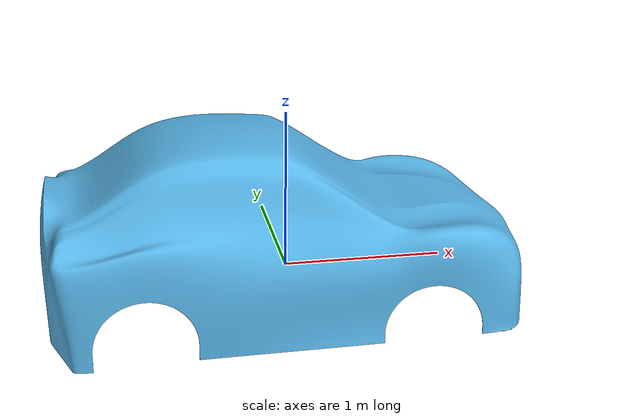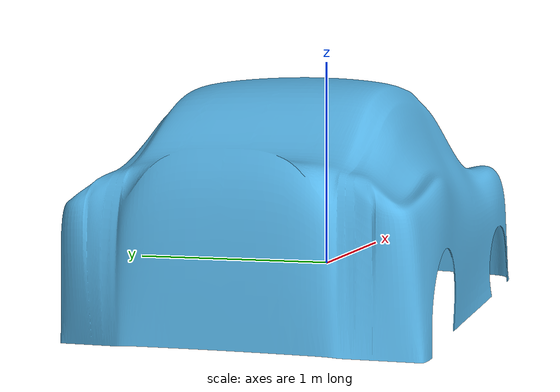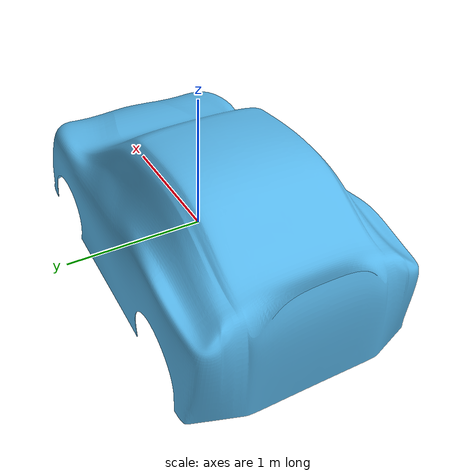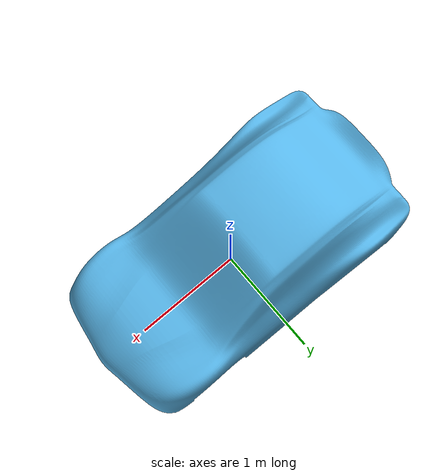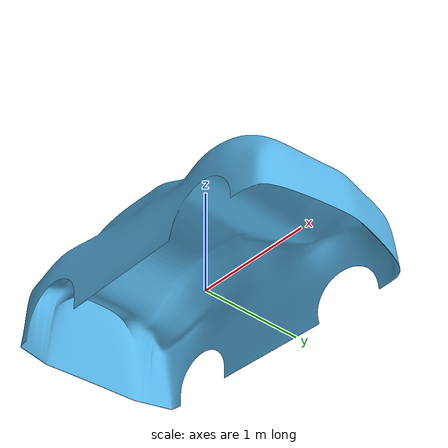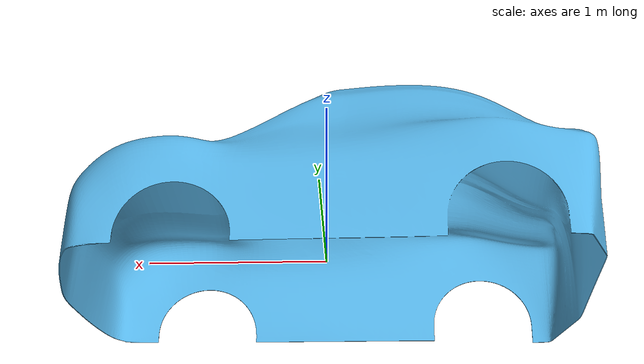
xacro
<?xml version="1.0"?>

<robot xmlns:xacro="http://www.ros.org/wiki/xacro" name="car">
    <link name="base_link" />
    <link name="shell_link">
        <visual>
            <origin xyz="0.0 0.0 0.0" rpy="0.0 0.0 ${pi / 2}" />
            <geometry>
                <mesh filename="file://$(find driver_assistant)/meshes/shell.dae" />
            </geometry>
        </visual>
        <collision>
            <origin xyz="0.0 0.0 0.0" rpy="0.0 0.0 0.0" />
            <geometry>
                <box size="2.95 1.55 1.1" />
            </geometry>
        </collision>
        <xacro:inertial_box mass="20" x="2.95" y="1.55" z="1.1" xyz="0.0 0.0 0.0" rpy="0.0 0.0 0.0" />
    </link>

    <joint name="shell_joint" type="fixed">
        <origin xyz="0.0 0.0 0.35" rpy="0.0 0.0 0.0" />
        <parent link="base_link" />
        <child link="shell_link" />
        <axis xyz="0.0 0.0 0.0" />
        <limit lower="0.0" upper="0.0" effort="0.0" velocity="0.0" />
    </joint>

</robot>
